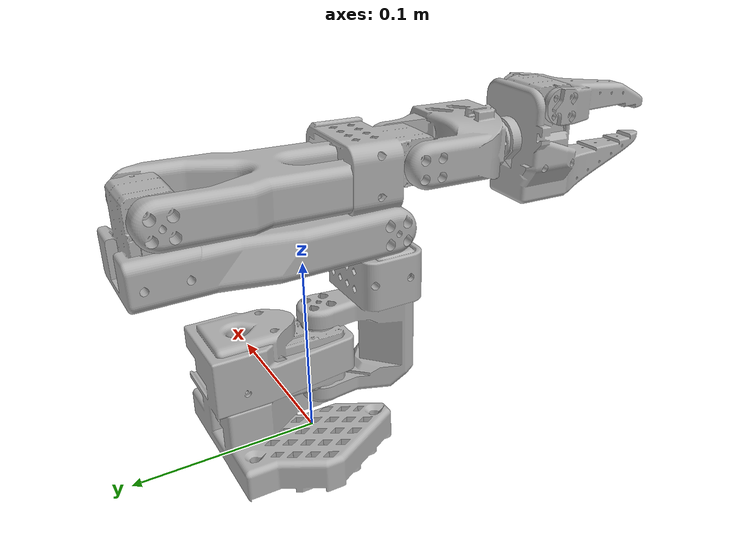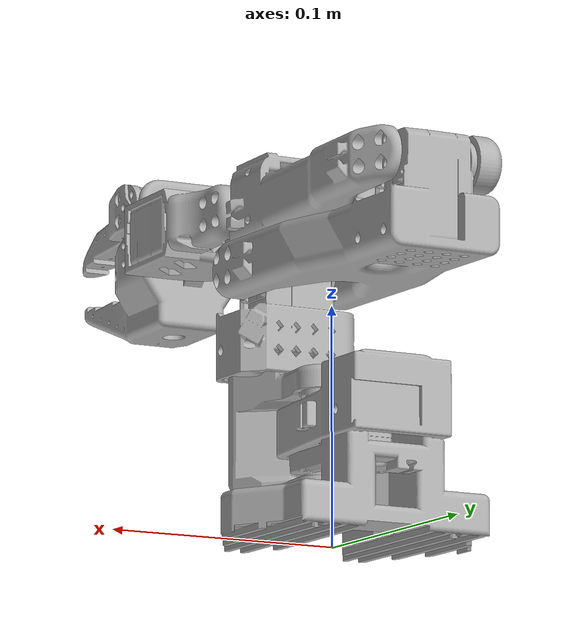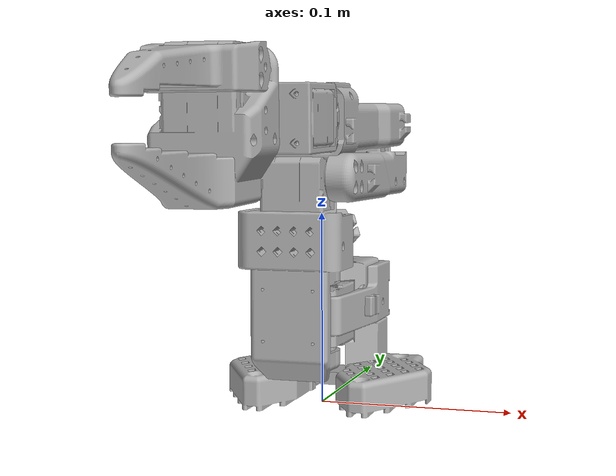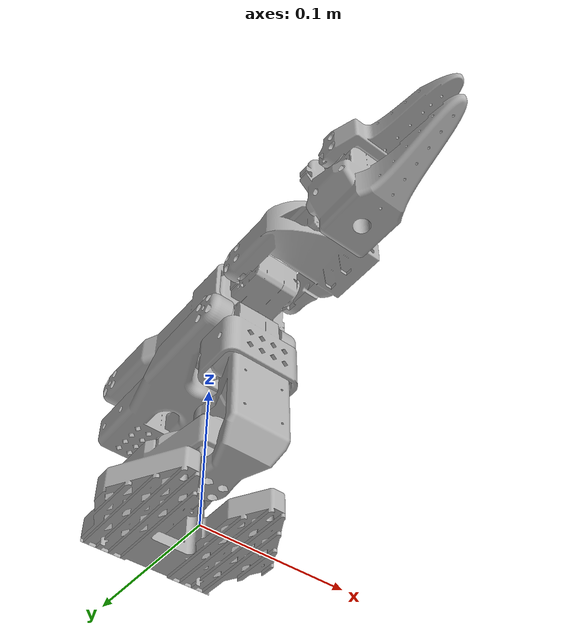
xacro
<?xml version="1.0" ?>
<robot name="lerobot" xmlns:xacro="http://www.ros.org/wiki/xacro">

    <xacro:arg name="is_sim" default="true"/>
    <xacro:arg name="serial_port" default="/dev/ttyACM0"/>
    <xacro:arg name="passive_mode" default="false"/>
    <xacro:arg name="move_time_ms" default="300"/>
    <xacro:arg name="command_deadband" default="0.002"/>

    <xacro:arg name="is_ignition" default="true"/>
    <xacro:arg name="invert_joint_sign" default="false"/>
    <xacro:include filename="$(find lerobot_description)/urdf/lerobot_gazebo.xacro"/>
    <xacro:include filename="$(find lerobot_description)/urdf/lerobot_ros2_control.xacro"/>
    <xacro:include filename="materials.xacro"/>

    <xacro:property name="PI" value="3.14159"/>
    <xacro:property name="ZERO" value="0.0"/>
    <xacro:property name="effort" value="30.0"/>
    <xacro:property name="velocity" value="10.0"/>

    <!-- Pose cero física (rad en URDF previo al ajuste): medida con joints_gui + robot real -->
    <xacro:property name="home_l1" value="0"/>
    <xacro:property name="home_l2" value="${PI}"/>
    <xacro:property name="home_l3" value="-3.107"/>
    <xacro:property name="home_l4" value="0"/>
    <xacro:property name="home_l5" value="0"/>
    <xacro:property name="home_l6" value="0"/>

    <!-- Límites originales (deg) antes del cambio de offset Feetech -->
    <xacro:property name="orig_l1_lo" value="-125"/>
    <xacro:property name="orig_l1_hi" value="125"/>
    <xacro:property name="orig_l2_lo" value="-35"/>
    <xacro:property name="orig_l2_hi" value="200"/>
    <xacro:property name="orig_l3_lo" value="-181"/>
    <xacro:property name="orig_l3_hi" value="20"/>
    <xacro:property name="orig_l4_lo" value="-90"/>
    <xacro:property name="orig_l4_hi" value="90"/>
    <xacro:property name="orig_l5_lo" value="-150"/>
    <xacro:property name="orig_l5_hi" value="150"/>
    <xacro:property name="orig_l6_lo" value="-100"/>
    <xacro:property name="orig_l6_hi" value="10"/>

    <!-- Límites re-expresados: nuevo = original - home (deg) -->
    <xacro:property name="lim_l1_lo" value="${orig_l1_lo - home_l1 * 180 / PI}"/>
    <xacro:property name="lim_l1_hi" value="${orig_l1_hi - home_l1 * 180 / PI}"/>
    <xacro:property name="lim_l2_lo" value="${orig_l2_lo - home_l2 * 180 / PI}"/>
    <xacro:property name="lim_l2_hi" value="${orig_l2_hi - home_l2 * 180 / PI}"/>
    <xacro:property name="lim_l3_lo" value="${orig_l3_lo - home_l3 * 180 / PI}"/>
    <xacro:property name="lim_l3_hi" value="${orig_l3_hi - home_l3 * 180 / PI}"/>
    <xacro:property name="lim_l4_lo" value="${orig_l4_lo - home_l4 * 180 / PI}"/>
    <xacro:property name="lim_l4_hi" value="${orig_l4_hi - home_l4 * 180 / PI}"/>
    <xacro:property name="lim_l5_lo" value="${orig_l5_lo - home_l5 * 180 / PI}"/>
    <xacro:property name="lim_l5_hi" value="${orig_l5_hi - home_l5 * 180 / PI}"/>
    <xacro:property name="lim_l6_lo" value="${orig_l6_lo - home_l6 * 180 / PI}"/>
    <xacro:property name="lim_l6_hi" value="${orig_l6_hi - home_l6 * 180 / PI}"/>

    <!-- Inversión solo para barras GUI: q' = -q, mismos topes físicos (lower'=-hi, upper'=-lo) -->
    <xacro:macro name="joint_limit" params="lo hi">
        <limit lower="${lo * PI / 180}" upper="${hi * PI / 180}" effort="${effort}" velocity="${velocity}"/>
    </xacro:macro>
    <xacro:macro name="joint_limit_inverted" params="lo hi">
        <limit lower="${-hi * PI / 180}" upper="${-lo * PI / 180}" effort="${effort}" velocity="${velocity}"/>
    </xacro:macro>

    <link name="world"/>

    <link name="base_link">
        <inertial>
            <origin xyz="-9.642459078465404e-05 0.019891856733790833 0.030552217737414043" rpy="0 0 0"/>
            <mass value="0.1914817969859309"/>
            <inertia ixx="0.000187" iyy="0.000189" izz="0.000196" ixy="0.0" iyz="-1.4e-05" ixz="0.0"/>
        </inertial>
        <visual>
            <origin xyz="0 0 0" rpy="0 0 0"/>
            <geometry>
                <mesh filename="package://lerobot_description/meshes/base_link.stl" scale="0.001 0.001 0.001"/>
            </geometry>
            <material name="silver"/>
        </visual>
        <collision>
            <origin xyz="0 0 0" rpy="0 0 0"/>
            <geometry>
                <mesh filename="package://lerobot_description/meshes/base_link.stl" scale="0.001 0.001 0.001"/>
            </geometry>
        </collision>
    </link>

    <link name="limb1_1">
        <inertial>
            <origin xyz="-0.00024132865612201757 -0.03182683697454744 0.010623633448186703" rpy="0 0 0"/>
            <mass value="0.12337744722531059"/>
            <inertia ixx="0.000125" iyy="0.000123" izz="3.4e-05" ixy="0.0" iyz="4e-06" ixz="0.0"/>
        </inertial>
        <visual>
            <origin xyz="0.00025 0.006978 -0.065594" rpy="0 0 0"/>
            <geometry>
            <mesh filename="package://lerobot_description/meshes/limb1_1.stl" scale="0.001 0.001 0.001"/>
            </geometry>
            <material name="silver"/>
        </visual>
        <collision>
            <origin xyz="0.00025 0.006978 -0.065594" rpy="0 0 0"/>
            <geometry>
            <mesh filename="package://lerobot_description/meshes/limb1_1.stl" scale="0.001 0.001 0.001"/>
            </geometry>
        </collision>
    </link>

    <link name="limb2_1">
        <inertial>
            <origin xyz="0.018208420998056387 0.07233063631375242 0.002577881218926492" rpy="0 0 0"/>
            <mass value="1.1906419322267483"/>
            <inertia ixx="0.001805" iyy="0.000521" izz="0.002049" ixy="1e-05" iyz="-0.000144" ixz="0.0"/>
        </inertial>
        <visual>
            <origin xyz="0.01915 0.038251 -0.119744" rpy="0 0 0"/>
            <geometry>
            <mesh filename="package://lerobot_description/meshes/limb2_1.stl" scale="0.001 0.001 0.001"/>
            </geometry>
            <material name="silver"/>
        </visual>
        <collision>
            <origin xyz="0.01915 0.038251 -0.119744" rpy="0 0 0"/>
            <geometry>
            <mesh filename="package://lerobot_description/meshes/limb2_1.stl" scale="0.001 0.001 0.001"/>
            </geometry>
        </collision>
    </link>

    <link name="limb3_1">
        <inertial>
            <origin xyz="0.017969532376485707 -0.07703470120091216 0.0021380981205127436" rpy="0 0 0"/>
            <mass value="1.1077317609456931"/>
            <inertia ixx="0.001756" iyy="0.000395" izz="0.002003" ixy="1.3e-05" iyz="8.2e-05" ixz="-0.0"/>
        </inertial>
        <visual>
            <origin xyz="0.01975 -0.074558 -0.146711" rpy="0 0 0"/>
            <geometry>
            <mesh filename="package://lerobot_description/meshes/limb3_1.stl" scale="0.001 0.001 0.001"/>
            </geometry>
            <material name="silver"/>
        </visual>
        <collision>
            <origin xyz="0.01975 -0.074558 -0.146711" rpy="0 0 0"/>
            <geometry>
            <mesh filename="package://lerobot_description/meshes/limb3_1.stl" scale="0.001 0.001 0.001"/>
            </geometry>
        </collision>
    </link>

    <link name="limb4_1">
        <inertial>
            <origin xyz="0.025371298583359233 -0.03515486574341366 0.0004912597019903209" rpy="0 0 0"/>
            <mass value="0.5194224938499433"/>
            <inertia ixx="0.000179" iyy="0.000204" izz="0.00031" ixy="3.6e-05" iyz="1e-06" ixz="0.0"/>
        </inertial>
        <visual>
            <origin xyz="0.02015 0.060241 -0.153085" rpy="0 0 0"/>
            <geometry>
            <mesh filename="package://lerobot_description/meshes/limb4_1.stl" scale="0.001 0.001 0.001"/>
            </geometry>
            <material name="silver"/>
        </visual>
        <collision>
            <origin xyz="0.02015 0.060241 -0.153085" rpy="0 0 0"/>
            <geometry>
            <mesh filename="package://lerobot_description/meshes/limb4_1.stl" scale="0.001 0.001 0.001"/>
            </geometry>
        </collision>
    </link>

    <link name="limb5_1">
        <inertial>
            <origin xyz="0.0003179786709944605 -0.026780755665705133 -0.005169496291362458" rpy="0 0 0"/>
            <mass value="0.713822465631267"/>
            <inertia ixx="0.00047" iyy="0.000309" izz="0.000331" ixy="-1e-06" iyz="-7.3e-05" ixz="-4e-06"/>
        </inertial>
        <visual>
            <origin xyz="0.00205 0.121539 -0.153617" rpy="0 0 0"/>
            <geometry>
            <mesh filename="package://lerobot_description/meshes/limb5_1.stl" scale="0.001 0.001 0.001"/>
            </geometry>
            <material name="silver"/>
        </visual>
        <collision>
            <origin xyz="0.00205 0.121539 -0.153617" rpy="0 0 0"/>
            <geometry>
            <mesh filename="package://lerobot_description/meshes/limb5_1.stl" scale="0.001 0.001 0.001"/>
            </geometry>
        </collision>
    </link>

    <link name="limb6_1">
        <inertial>
            <origin xyz="-0.01927559461099912 -0.0013144949548945517 0.03003444163375857" rpy="0 0 0"/>
            <mass value="0.021934073854098828"/>
            <inertia ixx="1e-05" iyy="1.2e-05" izz="3e-06" ixy="0.0" iyz="1e-06" ixz="-0.0"/>
        </inertial>
        <visual>
            <origin xyz="-0.01695 0.144759 -0.174482" rpy="0 0 0"/>
            <geometry>
            <mesh filename="package://lerobot_description/meshes/limb6_1.stl" scale="0.001 0.001 0.001"/>
            </geometry>
            <material name="silver"/>
        </visual>
        <collision>
            <origin xyz="-0.01695 0.144759 -0.174482" rpy="0 0 0"/>
            <geometry>
            <mesh filename="package://lerobot_description/meshes/limb6_1.stl" scale="0.001 0.001 0.001"/>
            </geometry>
        </collision>
    </link>

    <joint name="base_joint" type="fixed">
        <parent link="world"/>
        <child link="base_link"/>
        <origin xyz="0 0 0" rpy="0 0 0"/>
    </joint>

    <joint name="limb1_to_base_link" type="revolute">
        <parent link="base_link"/>
        <child link="limb1_1"/>
        <axis xyz="-0.0 0.0 1.0"/>
        <origin xyz="-0.00025 -0.006978 0.065594" rpy="0 0 0"/>
        <xacro:joint_limit lo="${lim_l1_lo}" hi="${lim_l1_hi}"/>
    </joint>

    <joint name="limb2_to_limb1" type="revolute">
        <origin xyz="-0.0189 -0.031273 0.05415" rpy="${PI + home_l2} 0 0"/>
        <parent link="limb1_1"/>
        <child link="limb2_1"/>
        <xacro:if value="$(arg invert_joint_sign)">
            <axis xyz="1.0 0.0 0.0"/>
            <xacro:joint_limit_inverted lo="${lim_l2_lo}" hi="${lim_l2_hi}"/>
        </xacro:if>
        <xacro:unless value="$(arg invert_joint_sign)">
            <axis xyz="-1.0 -0.0 -0.0"/>
            <xacro:joint_limit lo="${lim_l2_lo}" hi="${lim_l2_hi}"/>
        </xacro:unless>
    </joint>

    <joint name="limb3_to_limb2" type="revolute">
        <origin xyz="-0.0006 0.112809 0.026967" rpy="${PI + home_l3} 0 0"/>
        <parent link="limb2_1"/>
        <child link="limb3_1"/>
        <xacro:if value="$(arg invert_joint_sign)">
            <axis xyz="1.0 0.0 0.0"/>
            <xacro:joint_limit_inverted lo="${lim_l3_lo}" hi="${lim_l3_hi}"/>
        </xacro:if>
        <xacro:unless value="$(arg invert_joint_sign)">
            <axis xyz="-1.0 -0.0 -0.0"/>
            <xacro:joint_limit lo="${lim_l3_lo}" hi="${lim_l3_hi}"/>
        </xacro:unless>
    </joint>

    <joint name="limb4_to_limb3" type="revolute">
        <origin xyz="-0.0004 -0.134799 0.006374" rpy="${home_l4} 0 0"/>
        <parent link="limb3_1"/>
        <child link="limb4_1"/>
        <xacro:if value="$(arg invert_joint_sign)">
            <axis xyz="1.0 0.0 0.0"/>
            <xacro:joint_limit_inverted lo="${lim_l4_lo}" hi="${lim_l4_hi}"/>
        </xacro:if>
        <xacro:unless value="$(arg invert_joint_sign)">
            <axis xyz="-1.0 -0.0 0.0"/>
            <xacro:joint_limit lo="${lim_l4_lo}" hi="${lim_l4_hi}"/>
        </xacro:unless>
    </joint>

    <joint name="limb5_to_limb4" type="revolute">
        <origin xyz="0.0181 -0.061298 0.000532" rpy="${home_l5} 0 0"/>
        <parent link="limb4_1"/>
        <child link="limb5_1"/>
        <xacro:if value="$(arg invert_joint_sign)">
            <axis xyz="0.0 0.999962 -0.008688"/>
            <xacro:joint_limit_inverted lo="${lim_l5_lo}" hi="${lim_l5_hi}"/>
        </xacro:if>
        <xacro:unless value="$(arg invert_joint_sign)">
            <axis xyz="0.0 -0.999962 0.008688"/>
            <xacro:joint_limit lo="${lim_l5_lo}" hi="${lim_l5_hi}"/>
        </xacro:unless>
    </joint>

    <joint name="limb6_to_limb5" type="revolute">
        <origin xyz="0.019 -0.02322 0.020865" rpy="${1.57 + home_l6} 0 0"/>
        <parent link="limb5_1"/>
        <child link="limb6_1"/>
        <axis xyz="1.0 0.0 0.0"/>
        <xacro:joint_limit lo="${lim_l6_lo}" hi="${lim_l6_hi}"/>
    </joint>

</robot>

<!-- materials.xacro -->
<robot name="lerobot" xmlns:xacro="http://www.ros.org/wiki/xacro" >

<material name="silver">
  <color rgba="0.700 0.700 0.700 1.000"/>
</material>

</robot>
